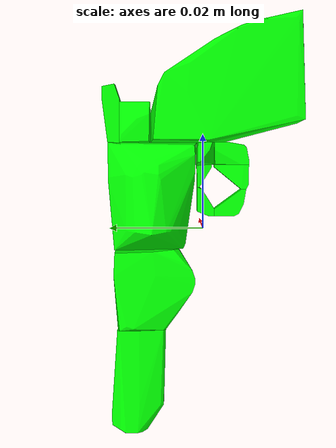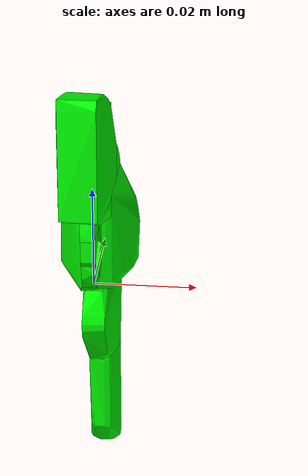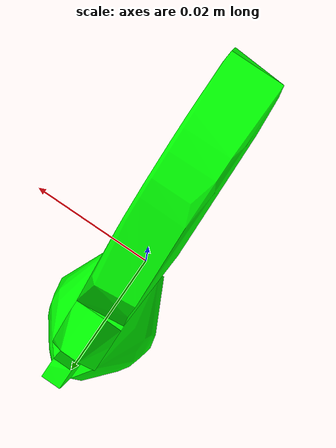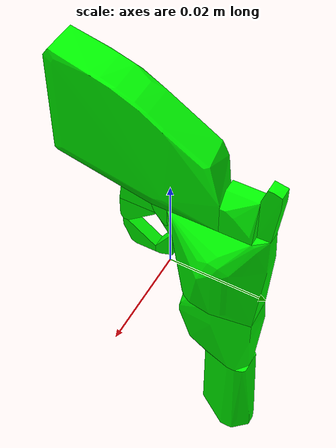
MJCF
<mujoco model="shapenet25-2">
  <asset>
    <mesh file="meshes/shapenet25-2/shapenet25-2_0.stl" name="shapenet25-2_0" scale="0.1 0.1 0.1"/>
    <mesh file="meshes/shapenet25-2/shapenet25-2_1.stl" name="shapenet25-2_1" scale="0.1 0.1 0.1"/>
    <mesh file="meshes/shapenet25-2/shapenet25-2_2.stl" name="shapenet25-2_2" scale="0.1 0.1 0.1"/>
    <mesh file="meshes/shapenet25-2/shapenet25-2_3.stl" name="shapenet25-2_3" scale="0.1 0.1 0.1"/>
    <mesh file="meshes/shapenet25-2/shapenet25-2_4.stl" name="shapenet25-2_4" scale="0.1 0.1 0.1"/>
    <mesh file="meshes/shapenet25-2/shapenet25-2_5.stl" name="shapenet25-2_5" scale="0.1 0.1 0.1"/>
    <mesh file="meshes/shapenet25-2/shapenet25-2_6.stl" name="shapenet25-2_6" scale="0.1 0.1 0.1"/>
    <mesh file="meshes/shapenet25-2/shapenet25-2_7.stl" name="shapenet25-2_7" scale="0.1 0.1 0.1"/>
    <mesh file="meshes/shapenet25-2/shapenet25-2_8.stl" name="shapenet25-2_8" scale="0.1 0.1 0.1"/>
    <mesh file="meshes/shapenet25-2/shapenet25-2_9.stl" name="shapenet25-2_9" scale="0.1 0.1 0.1"/>
    <mesh file="meshes/shapenet25-2/shapenet25-2_10.stl" name="shapenet25-2_10" scale="0.1 0.1 0.1"/>
    <mesh file="meshes/shapenet25-2/shapenet25-2_11.stl" name="shapenet25-2_11" scale="0.1 0.1 0.1"/>
  </asset>
  <worldbody>
    <body>
      <body name="collision">
        <geom pos="0 0 0" mesh="shapenet25-2_0" type="mesh" solimp="0.998 0.998 0.001" solref="0.001 1" density="100" friction="0.95 0.3 0.1" rgba="0 1 0 1" group="1" condim="4"/>
        <geom pos="0 0 0" mesh="shapenet25-2_1" type="mesh" solimp="0.998 0.998 0.001" solref="0.001 1" density="100" friction="0.95 0.3 0.1" rgba="0 1 0 1" group="1" condim="4"/>
        <geom pos="0 0 0" mesh="shapenet25-2_2" type="mesh" solimp="0.998 0.998 0.001" solref="0.001 1" density="100" friction="0.95 0.3 0.1" rgba="0 1 0 1" group="1" condim="4"/>
        <geom pos="0 0 0" mesh="shapenet25-2_3" type="mesh" solimp="0.998 0.998 0.001" solref="0.001 1" density="100" friction="0.95 0.3 0.1" rgba="0 1 0 1" group="1" condim="4"/>
        <geom pos="0 0 0" mesh="shapenet25-2_4" type="mesh" solimp="0.998 0.998 0.001" solref="0.001 1" density="100" friction="0.95 0.3 0.1" rgba="0 1 0 1" group="1" condim="4"/>
        <geom pos="0 0 0" mesh="shapenet25-2_5" type="mesh" solimp="0.998 0.998 0.001" solref="0.001 1" density="100" friction="0.95 0.3 0.1" rgba="0 1 0 1" group="1" condim="4"/>
        <geom pos="0 0 0" mesh="shapenet25-2_6" type="mesh" solimp="0.998 0.998 0.001" solref="0.001 1" density="100" friction="0.95 0.3 0.1" rgba="0 1 0 1" group="1" condim="4"/>
        <geom pos="0 0 0" mesh="shapenet25-2_7" type="mesh" solimp="0.998 0.998 0.001" solref="0.001 1" density="100" friction="0.95 0.3 0.1" rgba="0 1 0 1" group="1" condim="4"/>
        <geom pos="0 0 0" mesh="shapenet25-2_8" type="mesh" solimp="0.998 0.998 0.001" solref="0.001 1" density="100" friction="0.95 0.3 0.1" rgba="0 1 0 1" group="1" condim="4"/>
        <geom pos="0 0 0" mesh="shapenet25-2_9" type="mesh" solimp="0.998 0.998 0.001" solref="0.001 1" density="100" friction="0.95 0.3 0.1" rgba="0 1 0 1" group="1" condim="4"/>
        <geom pos="0 0 0" mesh="shapenet25-2_10" type="mesh" solimp="0.998 0.998 0.001" solref="0.001 1" density="100" friction="0.95 0.3 0.1" rgba="0 1 0 1" group="1" condim="4"/>
        <geom pos="0 0 0" mesh="shapenet25-2_11" type="mesh" solimp="0.998 0.998 0.001" solref="0.001 1" density="100" friction="0.95 0.3 0.1" rgba="0 1 0 1" group="1" condim="4"/>
      </body>
      <body name="visual">
        <geom pos="0 0 0" mesh="shapenet25-2_0" type="mesh" rgba="0 1 0 1" conaffinity="0" contype="0" group="0" mass="0.0001"/>
        <geom pos="0 0 0" mesh="shapenet25-2_1" type="mesh" rgba="0 1 0 1" conaffinity="0" contype="0" group="0" mass="0.0001"/>
        <geom pos="0 0 0" mesh="shapenet25-2_2" type="mesh" rgba="0 1 0 1" conaffinity="0" contype="0" group="0" mass="0.0001"/>
        <geom pos="0 0 0" mesh="shapenet25-2_3" type="mesh" rgba="0 1 0 1" conaffinity="0" contype="0" group="0" mass="0.0001"/>
        <geom pos="0 0 0" mesh="shapenet25-2_4" type="mesh" rgba="0 1 0 1" conaffinity="0" contype="0" group="0" mass="0.0001"/>
        <geom pos="0 0 0" mesh="shapenet25-2_5" type="mesh" rgba="0 1 0 1" conaffinity="0" contype="0" group="0" mass="0.0001"/>
        <geom pos="0 0 0" mesh="shapenet25-2_6" type="mesh" rgba="0 1 0 1" conaffinity="0" contype="0" group="0" mass="0.0001"/>
        <geom pos="0 0 0" mesh="shapenet25-2_7" type="mesh" rgba="0 1 0 1" conaffinity="0" contype="0" group="0" mass="0.0001"/>
        <geom pos="0 0 0" mesh="shapenet25-2_8" type="mesh" rgba="0 1 0 1" conaffinity="0" contype="0" group="0" mass="0.0001"/>
        <geom pos="0 0 0" mesh="shapenet25-2_9" type="mesh" rgba="0 1 0 1" conaffinity="0" contype="0" group="0" mass="0.0001"/>
        <geom pos="0 0 0" mesh="shapenet25-2_10" type="mesh" rgba="0 1 0 1" conaffinity="0" contype="0" group="0" mass="0.0001"/>
        <geom pos="0 0 0" mesh="shapenet25-2_11" type="mesh" rgba="0 1 0 1" conaffinity="0" contype="0" group="0" mass="0.0001"/>
      </body>
      <site rgba="0 0 0 0" size="0.005" pos="0 0 -0.06" name="bottom_site"/>
      <site rgba="0 0 0 0" size="0.005" pos="0 0 0.04" name="top_site"/>
      <site rgba="0 0 0 0" size="0.005" pos="0.025 0.025 0" name="horizontal_radius_site"/>
    </body>
  </worldbody>
</mujoco>
